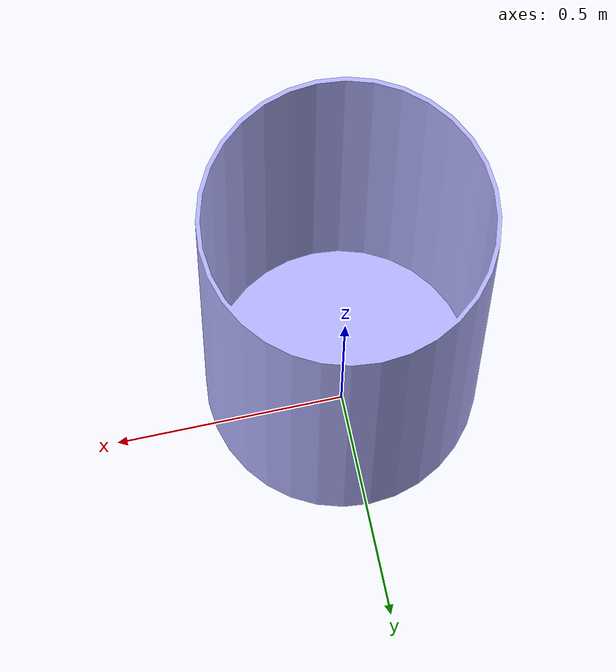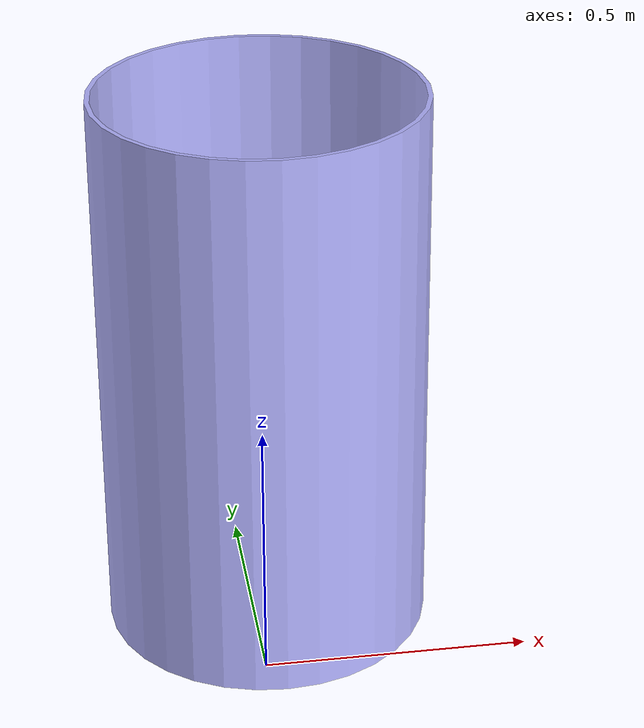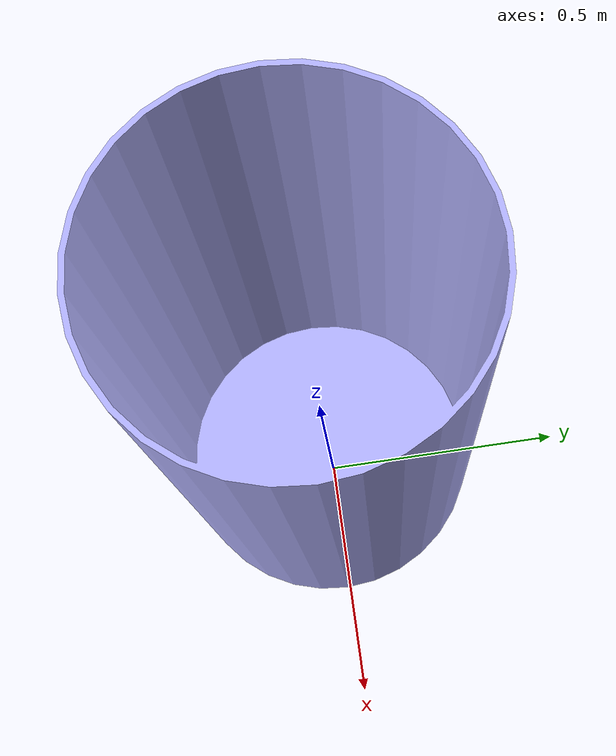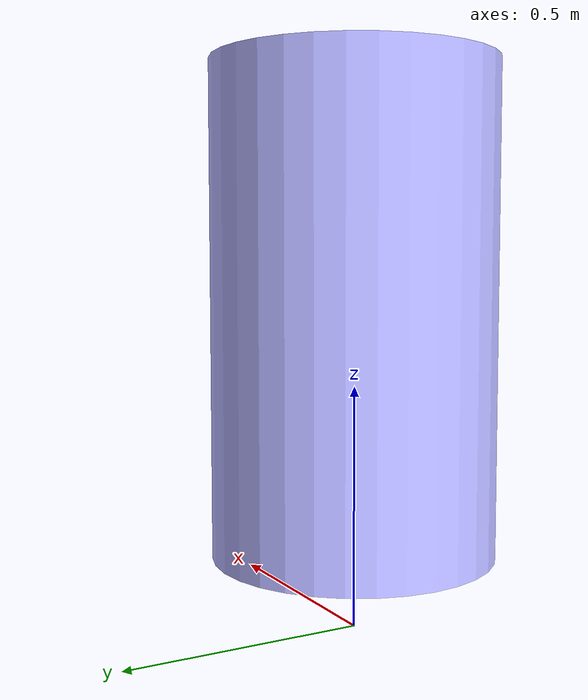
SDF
<?xml version="1.0" ?>
<sdf version="1.6">
    <model name='barrel'>
      <link name='link_3'>
        <inertial>
          <mass>1</mass>
          <inertia>
            <ixx>0.166667</ixx>
            <ixy>0</ixy>
            <ixz>0</ixz>
            <iyy>0.166667</iyy>
            <iyz>0</iyz>
            <izz>0.166667</izz>
          </inertia>
          <pose>0 0 0 0 -0 0</pose>
        </inertial>
        <pose>0 0 0 0 -0 0</pose>
        <gravity>1</gravity>
        <self_collide>0</self_collide>
        <kinematic>0</kinematic>
        <enable_wind>0</enable_wind>
        <visual name='visual'>
          <pose>0 0 0 0 -0 0</pose>
          <geometry>
            <mesh>
            <uri>model://barrel/barrel.stl</uri>
            <scale>1 1 1</scale>
            </mesh>
          </geometry>
          <material>
            <lighting>1</lighting>
            <script>
              <uri>file://media/materials/scripts/gazebo.material</uri>
              <name>Gazebo/Grey</name>
            </script>
            <shader type='pixel'>
              <normal_map>__default__</normal_map>
            </shader>
            <ambient>0 0 1 0</ambient>
            <diffuse>0.7 0.7 1 1</diffuse>
            <specular>0.01 0.01 1 1</specular>
            <emissive>0 0 1 1</emissive>
          </material>
          <transparency>0</transparency>
          <cast_shadows>1</cast_shadows>
        </visual>
        <collision name='collision'>
          <laser_retro>0</laser_retro>
          <max_contacts>10</max_contacts>
          <pose>0 0 0 0 -0 0</pose>
          <geometry>
            <mesh>
              <uri>model://barrel/barrel.stl</uri>
              <scale>1 1 1</scale>
            </mesh>
          </geometry>
          <surface>
            <friction>
              <ode>
                <mu>1</mu>
                <mu2>1</mu2>
                <fdir1>0 0 0</fdir1>
                <slip1>0</slip1>
                <slip2>0</slip2>
              </ode>
              <torsional>
                <coefficient>1</coefficient>
                <patch_radius>0</patch_radius>
                <surface_radius>0</surface_radius>
                <use_patch_radius>1</use_patch_radius>
                <ode>
                  <slip>0</slip>
                </ode>
              </torsional>
            </friction>
            <bounce>
              <restitution_coefficient>0</restitution_coefficient>
              <threshold>1e+06</threshold>
            </bounce>
            <contact>
              <collide_without_contact>0</collide_without_contact>
              <collide_without_contact_bitmask>1</collide_without_contact_bitmask>
              <collide_bitmask>1</collide_bitmask>
              <ode>
                <soft_cfm>0</soft_cfm>
                <soft_erp>0.2</soft_erp>
                <kp>1e+13</kp>
                <kd>1</kd>
                <max_vel>0.01</max_vel>
                <min_depth>0</min_depth>
              </ode>
              <bullet>
                <split_impulse>1</split_impulse>
                <split_impulse_penetration_threshold>-0.01</split_impulse_penetration_threshold>
                <soft_cfm>0</soft_cfm>
                <soft_erp>0.2</soft_erp>
                <kp>1e+13</kp>
                <kd>1</kd>
              </bullet>
            </contact>
          </surface>
        </collision>
      </link>
      <static>1</static>
      <allow_auto_disable>1</allow_auto_disable>
      <pose>1.17484 -0.55737 0.766244 0 -0 0</pose>
    </model>
</sdf>
